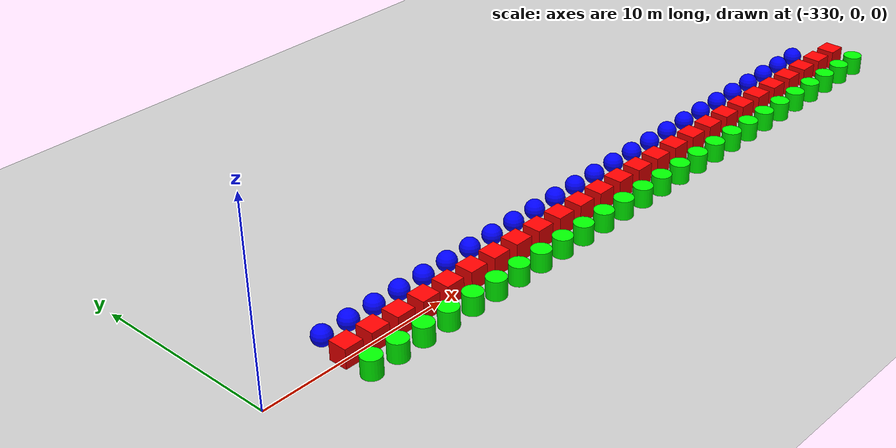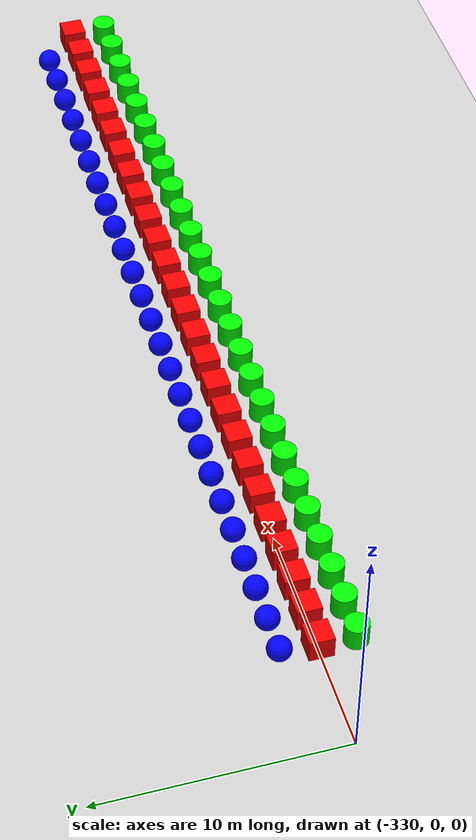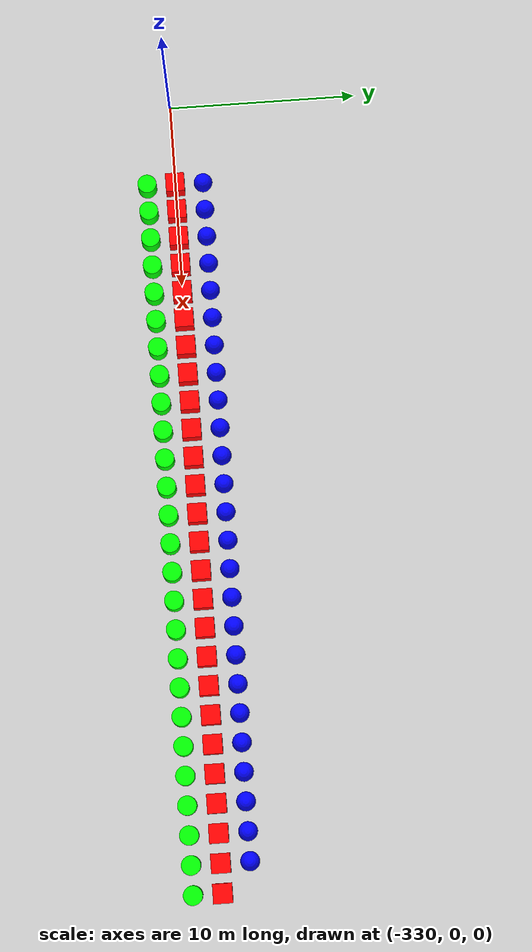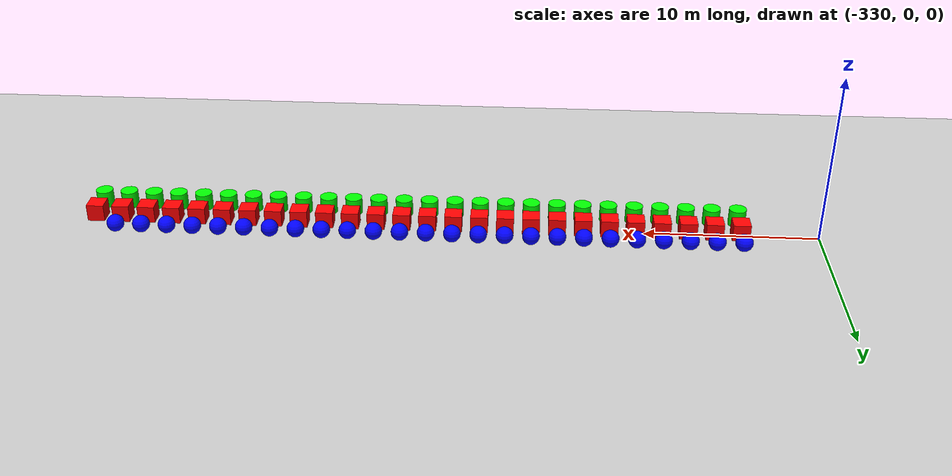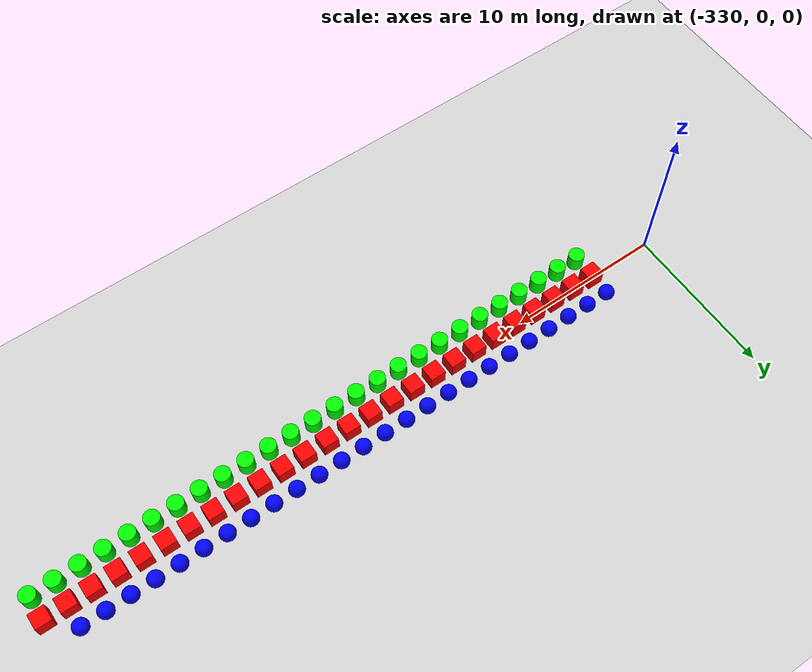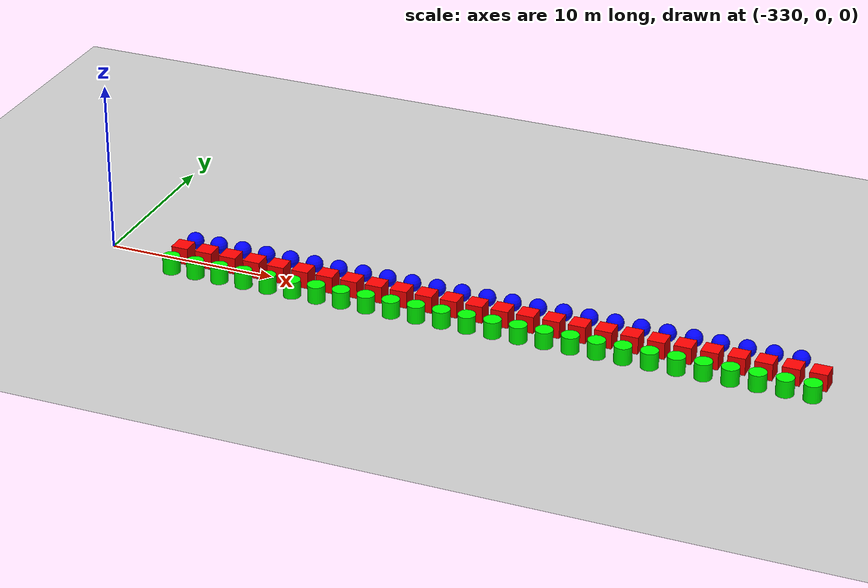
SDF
<sdf version="1.6">
 <world name="shapes">
  <model name="ground_plane">
   <static>true</static>
   <link name="link">
    <collision name="collision">
     <geometry><plane><normal>0 0 1</normal><size>100 100</size></plane></geometry>
    </collision>
    <visual name="visual">
     <geometry><plane><normal>0 0 1</normal><size>100 100</size></plane></geometry>
     <material>
      <ambient>0.8 0.8 0.8 1</ambient>
      <diffuse>0.8 0.8 0.8 1</diffuse>
      <specular>0.8 0.8 0.8 1</specular>
     </material>
    </visual>
   </link>
  </model>
  <model name="box_283">
   <static>false</static>
   <pose>-325.5 0 0.5 0 0 0</pose>
   <link name="box_link">
    <inertial>
     <inertia><ixx>1</ixx><ixy>0</ixy><ixz>0</ixz><iyy>1</iyy><iyz>0</iyz><izz>1</izz></inertia>
     <mass>1.0</mass>
    </inertial>
    <collision name="box_collision"><geometry><box><size>1 1 1</size></box></geometry></collision>
    <visual name="box_visual">
     <geometry><box><size>1 1 1</size></box></geometry>
     <material><ambient>1 0 0 1</ambient><diffuse>1 0 0 1</diffuse><specular>1 0 0 1</specular></material>
    </visual>
   </link>
  </model>
  <model name="cylinder_283">
   <static>false</static>
   <pose>-325.5 -1.5 0.5 0 0 0</pose>
   <link name="cylinder_link">
    <inertial>
     <inertia><ixx>2</ixx><ixy>0</ixy><ixz>0</ixz><iyy>2</iyy><iyz>0</iyz><izz>2</izz></inertia>
     <mass>2.0</mass>
    </inertial>
    <collision name="cylinder_collision">
     <geometry><cylinder><radius>0.5</radius><length>1.0</length></cylinder></geometry>
    </collision>
    <visual name="cylinder_visual">
     <geometry><cylinder><radius>0.5</radius><length>1.0</length></cylinder></geometry>
     <material><ambient>0 1 0 1</ambient><diffuse>0 1 0 1</diffuse><specular>0 1 0 1</specular></material>
    </visual>
   </link>
  </model>
  <model name="sphere_283">
   <static>false</static>
   <pose>-325.5 1.5 0.5 0 0 0</pose>
   <link name="sphere_link">
    <inertial>
     <inertia><ixx>3</ixx><ixy>0</ixy><ixz>0</ixz><iyy>3</iyy><iyz>0</iyz><izz>3</izz></inertia>
     <mass>3.0</mass>
    </inertial>
    <collision name="sphere_collision"><geometry><sphere><radius>0.5</radius></sphere></geometry></collision>
    <visual name="sphere_visual">
     <geometry><sphere><radius>0.5</radius></sphere></geometry>
     <material><ambient>0 0 1 1</ambient><diffuse>0 0 1 1</diffuse><specular>0 0 1 1</specular></material>
    </visual>
   </link>
  </model>
  <model name="box_284">
   <static>false</static>
   <pose>-324.0 0 0.5 0 0 0</pose>
   <link name="box_link">
    <inertial>
     <inertia><ixx>1</ixx><ixy>0</ixy><ixz>0</ixz><iyy>1</iyy><iyz>0</iyz><izz>1</izz></inertia>
     <mass>1.0</mass>
    </inertial>
    <collision name="box_collision"><geometry><box><size>1 1 1</size></box></geometry></collision>
    <visual name="box_visual">
     <geometry><box><size>1 1 1</size></box></geometry>
     <material><ambient>1 0 0 1</ambient><diffuse>1 0 0 1</diffuse><specular>1 0 0 1</specular></material>
    </visual>
   </link>
  </model>
  <model name="cylinder_284">
   <static>false</static>
   <pose>-324.0 -1.5 0.5 0 0 0</pose>
   <link name="cylinder_link">
    <inertial>
     <inertia><ixx>2</ixx><ixy>0</ixy><ixz>0</ixz><iyy>2</iyy><iyz>0</iyz><izz>2</izz></inertia>
     <mass>2.0</mass>
    </inertial>
    <collision name="cylinder_collision">
     <geometry><cylinder><radius>0.5</radius><length>1.0</length></cylinder></geometry>
    </collision>
    <visual name="cylinder_visual">
     <geometry><cylinder><radius>0.5</radius><length>1.0</length></cylinder></geometry>
     <material><ambient>0 1 0 1</ambient><diffuse>0 1 0 1</diffuse><specular>0 1 0 1</specular></material>
    </visual>
   </link>
  </model>
  <model name="sphere_284">
   <static>false</static>
   <pose>-324.0 1.5 0.5 0 0 0</pose>
   <link name="sphere_link">
    <inertial>
     <inertia><ixx>3</ixx><ixy>0</ixy><ixz>0</ixz><iyy>3</iyy><iyz>0</iyz><izz>3</izz></inertia>
     <mass>3.0</mass>
    </inertial>
    <collision name="sphere_collision"><geometry><sphere><radius>0.5</radius></sphere></geometry></collision>
    <visual name="sphere_visual">
     <geometry><sphere><radius>0.5</radius></sphere></geometry>
     <material><ambient>0 0 1 1</ambient><diffuse>0 0 1 1</diffuse><specular>0 0 1 1</specular></material>
    </visual>
   </link>
  </model>
  <model name="box_285">
   <static>false</static>
   <pose>-322.5 0 0.5 0 0 0</pose>
   <link name="box_link">
    <inertial>
     <inertia><ixx>1</ixx><ixy>0</ixy><ixz>0</ixz><iyy>1</iyy><iyz>0</iyz><izz>1</izz></inertia>
     <mass>1.0</mass>
    </inertial>
    <collision name="box_collision"><geometry><box><size>1 1 1</size></box></geometry></collision>
    <visual name="box_visual">
     <geometry><box><size>1 1 1</size></box></geometry>
     <material><ambient>1 0 0 1</ambient><diffuse>1 0 0 1</diffuse><specular>1 0 0 1</specular></material>
    </visual>
   </link>
  </model>
  <model name="cylinder_285">
   <static>false</static>
   <pose>-322.5 -1.5 0.5 0 0 0</pose>
   <link name="cylinder_link">
    <inertial>
     <inertia><ixx>2</ixx><ixy>0</ixy><ixz>0</ixz><iyy>2</iyy><iyz>0</iyz><izz>2</izz></inertia>
     <mass>2.0</mass>
    </inertial>
    <collision name="cylinder_collision">
     <geometry><cylinder><radius>0.5</radius><length>1.0</length></cylinder></geometry>
    </collision>
    <visual name="cylinder_visual">
     <geometry><cylinder><radius>0.5</radius><length>1.0</length></cylinder></geometry>
     <material><ambient>0 1 0 1</ambient><diffuse>0 1 0 1</diffuse><specular>0 1 0 1</specular></material>
    </visual>
   </link>
  </model>
  <model name="sphere_285">
   <static>false</static>
   <pose>-322.5 1.5 0.5 0 0 0</pose>
   <link name="sphere_link">
    <inertial>
     <inertia><ixx>3</ixx><ixy>0</ixy><ixz>0</ixz><iyy>3</iyy><iyz>0</iyz><izz>3</izz></inertia>
     <mass>3.0</mass>
    </inertial>
    <collision name="sphere_collision"><geometry><sphere><radius>0.5</radius></sphere></geometry></collision>
    <visual name="sphere_visual">
     <geometry><sphere><radius>0.5</radius></sphere></geometry>
     <material><ambient>0 0 1 1</ambient><diffuse>0 0 1 1</diffuse><specular>0 0 1 1</specular></material>
    </visual>
   </link>
  </model>
  <model name="box_286">
   <static>false</static>
   <pose>-321.0 0 0.5 0 0 0</pose>
   <link name="box_link">
    <inertial>
     <inertia><ixx>1</ixx><ixy>0</ixy><ixz>0</ixz><iyy>1</iyy><iyz>0</iyz><izz>1</izz></inertia>
     <mass>1.0</mass>
    </inertial>
    <collision name="box_collision"><geometry><box><size>1 1 1</size></box></geometry></collision>
    <visual name="box_visual">
     <geometry><box><size>1 1 1</size></box></geometry>
     <material><ambient>1 0 0 1</ambient><diffuse>1 0 0 1</diffuse><specular>1 0 0 1</specular></material>
    </visual>
   </link>
  </model>
  <model name="cylinder_286">
   <static>false</static>
   <pose>-321.0 -1.5 0.5 0 0 0</pose>
   <link name="cylinder_link">
    <inertial>
     <inertia><ixx>2</ixx><ixy>0</ixy><ixz>0</ixz><iyy>2</iyy><iyz>0</iyz><izz>2</izz></inertia>
     <mass>2.0</mass>
    </inertial>
    <collision name="cylinder_collision">
     <geometry><cylinder><radius>0.5</radius><length>1.0</length></cylinder></geometry>
    </collision>
    <visual name="cylinder_visual">
     <geometry><cylinder><radius>0.5</radius><length>1.0</length></cylinder></geometry>
     <material><ambient>0 1 0 1</ambient><diffuse>0 1 0 1</diffuse><specular>0 1 0 1</specular></material>
    </visual>
   </link>
  </model>
  <model name="sphere_286">
   <static>false</static>
   <pose>-321.0 1.5 0.5 0 0 0</pose>
   <link name="sphere_link">
    <inertial>
     <inertia><ixx>3</ixx><ixy>0</ixy><ixz>0</ixz><iyy>3</iyy><iyz>0</iyz><izz>3</izz></inertia>
     <mass>3.0</mass>
    </inertial>
    <collision name="sphere_collision"><geometry><sphere><radius>0.5</radius></sphere></geometry></collision>
    <visual name="sphere_visual">
     <geometry><sphere><radius>0.5</radius></sphere></geometry>
     <material><ambient>0 0 1 1</ambient><diffuse>0 0 1 1</diffuse><specular>0 0 1 1</specular></material>
    </visual>
   </link>
  </model>
  <model name="box_287">
   <static>false</static>
   <pose>-319.5 0 0.5 0 0 0</pose>
   <link name="box_link">
    <inertial>
     <inertia><ixx>1</ixx><ixy>0</ixy><ixz>0</ixz><iyy>1</iyy><iyz>0</iyz><izz>1</izz></inertia>
     <mass>1.0</mass>
    </inertial>
    <collision name="box_collision"><geometry><box><size>1 1 1</size></box></geometry></collision>
    <visual name="box_visual">
     <geometry><box><size>1 1 1</size></box></geometry>
     <material><ambient>1 0 0 1</ambient><diffuse>1 0 0 1</diffuse><specular>1 0 0 1</specular></material>
    </visual>
   </link>
  </model>
  <model name="cylinder_287">
   <static>false</static>
   <pose>-319.5 -1.5 0.5 0 0 0</pose>
   <link name="cylinder_link">
    <inertial>
     <inertia><ixx>2</ixx><ixy>0</ixy><ixz>0</ixz><iyy>2</iyy><iyz>0</iyz><izz>2</izz></inertia>
     <mass>2.0</mass>
    </inertial>
    <collision name="cylinder_collision">
     <geometry><cylinder><radius>0.5</radius><length>1.0</length></cylinder></geometry>
    </collision>
    <visual name="cylinder_visual">
     <geometry><cylinder><radius>0.5</radius><length>1.0</length></cylinder></geometry>
     <material><ambient>0 1 0 1</ambient><diffuse>0 1 0 1</diffuse><specular>0 1 0 1</specular></material>
    </visual>
   </link>
  </model>
  <model name="sphere_287">
   <static>false</static>
   <pose>-319.5 1.5 0.5 0 0 0</pose>
   <link name="sphere_link">
    <inertial>
     <inertia><ixx>3</ixx><ixy>0</ixy><ixz>0</ixz><iyy>3</iyy><iyz>0</iyz><izz>3</izz></inertia>
     <mass>3.0</mass>
    </inertial>
    <collision name="sphere_collision"><geometry><sphere><radius>0.5</radius></sphere></geometry></collision>
    <visual name="sphere_visual">
     <geometry><sphere><radius>0.5</radius></sphere></geometry>
     <material><ambient>0 0 1 1</ambient><diffuse>0 0 1 1</diffuse><specular>0 0 1 1</specular></material>
    </visual>
   </link>
  </model>
  <model name="box_288">
   <static>false</static>
   <pose>-318.0 0 0.5 0 0 0</pose>
   <link name="box_link">
    <inertial>
     <inertia><ixx>1</ixx><ixy>0</ixy><ixz>0</ixz><iyy>1</iyy><iyz>0</iyz><izz>1</izz></inertia>
     <mass>1.0</mass>
    </inertial>
    <collision name="box_collision"><geometry><box><size>1 1 1</size></box></geometry></collision>
    <visual name="box_visual">
     <geometry><box><size>1 1 1</size></box></geometry>
     <material><ambient>1 0 0 1</ambient><diffuse>1 0 0 1</diffuse><specular>1 0 0 1</specular></material>
    </visual>
   </link>
  </model>
  <model name="cylinder_288">
   <static>false</static>
   <pose>-318.0 -1.5 0.5 0 0 0</pose>
   <link name="cylinder_link">
    <inertial>
     <inertia><ixx>2</ixx><ixy>0</ixy><ixz>0</ixz><iyy>2</iyy><iyz>0</iyz><izz>2</izz></inertia>
     <mass>2.0</mass>
    </inertial>
    <collision name="cylinder_collision">
     <geometry><cylinder><radius>0.5</radius><length>1.0</length></cylinder></geometry>
    </collision>
    <visual name="cylinder_visual">
     <geometry><cylinder><radius>0.5</radius><length>1.0</length></cylinder></geometry>
     <material><ambient>0 1 0 1</ambient><diffuse>0 1 0 1</diffuse><specular>0 1 0 1</specular></material>
    </visual>
   </link>
  </model>
  <model name="sphere_288">
   <static>false</static>
   <pose>-318.0 1.5 0.5 0 0 0</pose>
   <link name="sphere_link">
    <inertial>
     <inertia><ixx>3</ixx><ixy>0</ixy><ixz>0</ixz><iyy>3</iyy><iyz>0</iyz><izz>3</izz></inertia>
     <mass>3.0</mass>
    </inertial>
    <collision name="sphere_collision"><geometry><sphere><radius>0.5</radius></sphere></geometry></collision>
    <visual name="sphere_visual">
     <geometry><sphere><radius>0.5</radius></sphere></geometry>
     <material><ambient>0 0 1 1</ambient><diffuse>0 0 1 1</diffuse><specular>0 0 1 1</specular></material>
    </visual>
   </link>
  </model>
  <model name="box_289">
   <static>false</static>
   <pose>-316.5 0 0.5 0 0 0</pose>
   <link name="box_link">
    <inertial>
     <inertia><ixx>1</ixx><ixy>0</ixy><ixz>0</ixz><iyy>1</iyy><iyz>0</iyz><izz>1</izz></inertia>
     <mass>1.0</mass>
    </inertial>
    <collision name="box_collision"><geometry><box><size>1 1 1</size></box></geometry></collision>
    <visual name="box_visual">
     <geometry><box><size>1 1 1</size></box></geometry>
     <material><ambient>1 0 0 1</ambient><diffuse>1 0 0 1</diffuse><specular>1 0 0 1</specular></material>
    </visual>
   </link>
  </model>
  <model name="cylinder_289">
   <static>false</static>
   <pose>-316.5 -1.5 0.5 0 0 0</pose>
   <link name="cylinder_link">
    <inertial>
     <inertia><ixx>2</ixx><ixy>0</ixy><ixz>0</ixz><iyy>2</iyy><iyz>0</iyz><izz>2</izz></inertia>
     <mass>2.0</mass>
    </inertial>
    <collision name="cylinder_collision">
     <geometry><cylinder><radius>0.5</radius><length>1.0</length></cylinder></geometry>
    </collision>
    <visual name="cylinder_visual">
     <geometry><cylinder><radius>0.5</radius><length>1.0</length></cylinder></geometry>
     <material><ambient>0 1 0 1</ambient><diffuse>0 1 0 1</diffuse><specular>0 1 0 1</specular></material>
    </visual>
   </link>
  </model>
  <model name="sphere_289">
   <static>false</static>
   <pose>-316.5 1.5 0.5 0 0 0</pose>
   <link name="sphere_link">
    <inertial>
     <inertia><ixx>3</ixx><ixy>0</ixy><ixz>0</ixz><iyy>3</iyy><iyz>0</iyz><izz>3</izz></inertia>
     <mass>3.0</mass>
    </inertial>
    <collision name="sphere_collision"><geometry><sphere><radius>0.5</radius></sphere></geometry></collision>
    <visual name="sphere_visual">
     <geometry><sphere><radius>0.5</radius></sphere></geometry>
     <material><ambient>0 0 1 1</ambient><diffuse>0 0 1 1</diffuse><specular>0 0 1 1</specular></material>
    </visual>
   </link>
  </model>
  <model name="box_290">
   <static>false</static>
   <pose>-315.0 0 0.5 0 0 0</pose>
   <link name="box_link">
    <inertial>
     <inertia><ixx>1</ixx><ixy>0</ixy><ixz>0</ixz><iyy>1</iyy><iyz>0</iyz><izz>1</izz></inertia>
     <mass>1.0</mass>
    </inertial>
    <collision name="box_collision"><geometry><box><size>1 1 1</size></box></geometry></collision>
    <visual name="box_visual">
     <geometry><box><size>1 1 1</size></box></geometry>
     <material><ambient>1 0 0 1</ambient><diffuse>1 0 0 1</diffuse><specular>1 0 0 1</specular></material>
    </visual>
   </link>
  </model>
  <model name="cylinder_290">
   <static>false</static>
   <pose>-315.0 -1.5 0.5 0 0 0</pose>
   <link name="cylinder_link">
    <inertial>
     <inertia><ixx>2</ixx><ixy>0</ixy><ixz>0</ixz><iyy>2</iyy><iyz>0</iyz><izz>2</izz></inertia>
     <mass>2.0</mass>
    </inertial>
    <collision name="cylinder_collision">
     <geometry><cylinder><radius>0.5</radius><length>1.0</length></cylinder></geometry>
    </collision>
    <visual name="cylinder_visual">
     <geometry><cylinder><radius>0.5</radius><length>1.0</length></cylinder></geometry>
     <material><ambient>0 1 0 1</ambient><diffuse>0 1 0 1</diffuse><specular>0 1 0 1</specular></material>
    </visual>
   </link>
  </model>
  <model name="sphere_290">
   <static>false</static>
   <pose>-315.0 1.5 0.5 0 0 0</pose>
   <link name="sphere_link">
    <inertial>
     <inertia><ixx>3</ixx><ixy>0</ixy><ixz>0</ixz><iyy>3</iyy><iyz>0</iyz><izz>3</izz></inertia>
     <mass>3.0</mass>
    </inertial>
    <collision name="sphere_collision"><geometry><sphere><radius>0.5</radius></sphere></geometry></collision>
    <visual name="sphere_visual">
     <geometry><sphere><radius>0.5</radius></sphere></geometry>
     <material><ambient>0 0 1 1</ambient><diffuse>0 0 1 1</diffuse><specular>0 0 1 1</specular></material>
    </visual>
   </link>
  </model>
  <model name="box_291">
   <static>false</static>
   <pose>-313.5 0 0.5 0 0 0</pose>
   <link name="box_link">
    <inertial>
     <inertia><ixx>1</ixx><ixy>0</ixy><ixz>0</ixz><iyy>1</iyy><iyz>0</iyz><izz>1</izz></inertia>
     <mass>1.0</mass>
    </inertial>
    <collision name="box_collision"><geometry><box><size>1 1 1</size></box></geometry></collision>
    <visual name="box_visual">
     <geometry><box><size>1 1 1</size></box></geometry>
     <material><ambient>1 0 0 1</ambient><diffuse>1 0 0 1</diffuse><specular>1 0 0 1</specular></material>
    </visual>
   </link>
  </model>
  <model name="cylinder_291">
   <static>false</static>
   <pose>-313.5 -1.5 0.5 0 0 0</pose>
   <link name="cylinder_link">
    <inertial>
     <inertia><ixx>2</ixx><ixy>0</ixy><ixz>0</ixz><iyy>2</iyy><iyz>0</iyz><izz>2</izz></inertia>
     <mass>2.0</mass>
    </inertial>
    <collision name="cylinder_collision">
     <geometry><cylinder><radius>0.5</radius><length>1.0</length></cylinder></geometry>
    </collision>
    <visual name="cylinder_visual">
     <geometry><cylinder><radius>0.5</radius><length>1.0</length></cylinder></geometry>
     <material><ambient>0 1 0 1</ambient><diffuse>0 1 0 1</diffuse><specular>0 1 0 1</specular></material>
    </visual>
   </link>
  </model>
  <model name="sphere_291">
   <static>false</static>
   <pose>-313.5 1.5 0.5 0 0 0</pose>
   <link name="sphere_link">
    <inertial>
     <inertia><ixx>3</ixx><ixy>0</ixy><ixz>0</ixz><iyy>3</iyy><iyz>0</iyz><izz>3</izz></inertia>
     <mass>3.0</mass>
    </inertial>
    <collision name="sphere_collision"><geometry><sphere><radius>0.5</radius></sphere></geometry></collision>
    <visual name="sphere_visual">
     <geometry><sphere><radius>0.5</radius></sphere></geometry>
     <material><ambient>0 0 1 1</ambient><diffuse>0 0 1 1</diffuse><specular>0 0 1 1</specular></material>
    </visual>
   </link>
  </model>
  <model name="box_292">
   <static>false</static>
   <pose>-312.0 0 0.5 0 0 0</pose>
   <link name="box_link">
    <inertial>
     <inertia><ixx>1</ixx><ixy>0</ixy><ixz>0</ixz><iyy>1</iyy><iyz>0</iyz><izz>1</izz></inertia>
     <mass>1.0</mass>
    </inertial>
    <collision name="box_collision"><geometry><box><size>1 1 1</size></box></geometry></collision>
    <visual name="box_visual">
     <geometry><box><size>1 1 1</size></box></geometry>
     <material><ambient>1 0 0 1</ambient><diffuse>1 0 0 1</diffuse><specular>1 0 0 1</specular></material>
    </visual>
   </link>
  </model>
  <model name="cylinder_292">
   <static>false</static>
   <pose>-312.0 -1.5 0.5 0 0 0</pose>
   <link name="cylinder_link">
    <inertial>
     <inertia><ixx>2</ixx><ixy>0</ixy><ixz>0</ixz><iyy>2</iyy><iyz>0</iyz><izz>2</izz></inertia>
     <mass>2.0</mass>
    </inertial>
    <collision name="cylinder_collision">
     <geometry><cylinder><radius>0.5</radius><length>1.0</length></cylinder></geometry>
    </collision>
    <visual name="cylinder_visual">
     <geometry><cylinder><radius>0.5</radius><length>1.0</length></cylinder></geometry>
     <material><ambient>0 1 0 1</ambient><diffuse>0 1 0 1</diffuse><specular>0 1 0 1</specular></material>
    </visual>
   </link>
  </model>
  <model name="sphere_292">
   <static>false</static>
   <pose>-312.0 1.5 0.5 0 0 0</pose>
   <link name="sphere_link">
    <inertial>
     <inertia><ixx>3</ixx><ixy>0</ixy><ixz>0</ixz><iyy>3</iyy><iyz>0</iyz><izz>3</izz></inertia>
     <mass>3.0</mass>
    </inertial>
    <collision name="sphere_collision"><geometry><sphere><radius>0.5</radius></sphere></geometry></collision>
    <visual name="sphere_visual">
     <geometry><sphere><radius>0.5</radius></sphere></geometry>
     <material><ambient>0 0 1 1</ambient><diffuse>0 0 1 1</diffuse><specular>0 0 1 1</specular></material>
    </visual>
   </link>
  </model>
  <model name="box_293">
   <static>false</static>
   <pose>-310.5 0 0.5 0 0 0</pose>
   <link name="box_link">
    <inertial>
     <inertia><ixx>1</ixx><ixy>0</ixy><ixz>0</ixz><iyy>1</iyy><iyz>0</iyz><izz>1</izz></inertia>
     <mass>1.0</mass>
    </inertial>
    <collision name="box_collision"><geometry><box><size>1 1 1</size></box></geometry></collision>
    <visual name="box_visual">
     <geometry><box><size>1 1 1</size></box></geometry>
     <material><ambient>1 0 0 1</ambient><diffuse>1 0 0 1</diffuse><specular>1 0 0 1</specular></material>
    </visual>
   </link>
  </model>
  <model name="cylinder_293">
   <static>false</static>
   <pose>-310.5 -1.5 0.5 0 0 0</pose>
   <link name="cylinder_link">
    <inertial>
     <inertia><ixx>2</ixx><ixy>0</ixy><ixz>0</ixz><iyy>2</iyy><iyz>0</iyz><izz>2</izz></inertia>
     <mass>2.0</mass>
    </inertial>
    <collision name="cylinder_collision">
     <geometry><cylinder><radius>0.5</radius><length>1.0</length></cylinder></geometry>
    </collision>
    <visual name="cylinder_visual">
     <geometry><cylinder><radius>0.5</radius><length>1.0</length></cylinder></geometry>
     <material><ambient>0 1 0 1</ambient><diffuse>0 1 0 1</diffuse><specular>0 1 0 1</specular></material>
    </visual>
   </link>
  </model>
  <model name="sphere_293">
   <static>false</static>
   <pose>-310.5 1.5 0.5 0 0 0</pose>
   <link name="sphere_link">
    <inertial>
     <inertia><ixx>3</ixx><ixy>0</ixy><ixz>0</ixz><iyy>3</iyy><iyz>0</iyz><izz>3</izz></inertia>
     <mass>3.0</mass>
    </inertial>
    <collision name="sphere_collision"><geometry><sphere><radius>0.5</radius></sphere></geometry></collision>
    <visual name="sphere_visual">
     <geometry><sphere><radius>0.5</radius></sphere></geometry>
     <material><ambient>0 0 1 1</ambient><diffuse>0 0 1 1</diffuse><specular>0 0 1 1</specular></material>
    </visual>
   </link>
  </model>
  <model name="box_294">
   <static>false</static>
   <pose>-309.0 0 0.5 0 0 0</pose>
   <link name="box_link">
    <inertial>
     <inertia><ixx>1</ixx><ixy>0</ixy><ixz>0</ixz><iyy>1</iyy><iyz>0</iyz><izz>1</izz></inertia>
     <mass>1.0</mass>
    </inertial>
    <collision name="box_collision"><geometry><box><size>1 1 1</size></box></geometry></collision>
    <visual name="box_visual">
     <geometry><box><size>1 1 1</size></box></geometry>
     <material><ambient>1 0 0 1</ambient><diffuse>1 0 0 1</diffuse><specular>1 0 0 1</specular></material>
    </visual>
   </link>
  </model>
  <model name="cylinder_294">
   <static>false</static>
   <pose>-309.0 -1.5 0.5 0 0 0</pose>
   <link name="cylinder_link">
    <inertial>
     <inertia><ixx>2</ixx><ixy>0</ixy><ixz>0</ixz><iyy>2</iyy><iyz>0</iyz><izz>2</izz></inertia>
     <mass>2.0</mass>
    </inertial>
    <collision name="cylinder_collision">
     <geometry><cylinder><radius>0.5</radius><length>1.0</length></cylinder></geometry>
    </collision>
    <visual name="cylinder_visual">
     <geometry><cylinder><radius>0.5</radius><length>1.0</length></cylinder></geometry>
     <material><ambient>0 1 0 1</ambient><diffuse>0 1 0 1</diffuse><specular>0 1 0 1</specular></material>
    </visual>
   </link>
  </model>
  <model name="sphere_294">
   <static>false</static>
   <pose>-309.0 1.5 0.5 0 0 0</pose>
   <link name="sphere_link">
    <inertial>
     <inertia><ixx>3</ixx><ixy>0</ixy><ixz>0</ixz><iyy>3</iyy><iyz>0</iyz><izz>3</izz></inertia>
     <mass>3.0</mass>
    </inertial>
    <collision name="sphere_collision"><geometry><sphere><radius>0.5</radius></sphere></geometry></collision>
    <visual name="sphere_visual">
     <geometry><sphere><radius>0.5</radius></sphere></geometry>
     <material><ambient>0 0 1 1</ambient><diffuse>0 0 1 1</diffuse><specular>0 0 1 1</specular></material>
    </visual>
   </link>
  </model>
  <model name="box_295">
   <static>false</static>
   <pose>-307.5 0 0.5 0 0 0</pose>
   <link name="box_link">
    <inertial>
     <inertia><ixx>1</ixx><ixy>0</ixy><ixz>0</ixz><iyy>1</iyy><iyz>0</iyz><izz>1</izz></inertia>
     <mass>1.0</mass>
    </inertial>
    <collision name="box_collision"><geometry><box><size>1 1 1</size></box></geometry></collision>
    <visual name="box_visual">
     <geometry><box><size>1 1 1</size></box></geometry>
     <material><ambient>1 0 0 1</ambient><diffuse>1 0 0 1</diffuse><specular>1 0 0 1</specular></material>
    </visual>
   </link>
  </model>
  <model name="cylinder_295">
   <static>false</static>
   <pose>-307.5 -1.5 0.5 0 0 0</pose>
   <link name="cylinder_link">
    <inertial>
     <inertia><ixx>2</ixx><ixy>0</ixy><ixz>0</ixz><iyy>2</iyy><iyz>0</iyz><izz>2</izz></inertia>
     <mass>2.0</mass>
    </inertial>
    <collision name="cylinder_collision">
     <geometry><cylinder><radius>0.5</radius><length>1.0</length></cylinder></geometry>
    </collision>
    <visual name="cylinder_visual">
     <geometry><cylinder><radius>0.5</radius><length>1.0</length></cylinder></geometry>
     <material><ambient>0 1 0 1</ambient><diffuse>0 1 0 1</diffuse><specular>0 1 0 1</specular></material>
    </visual>
   </link>
  </model>
  <model name="sphere_295">
   <static>false</static>
   <pose>-307.5 1.5 0.5 0 0 0</pose>
   <link name="sphere_link">
    <inertial>
     <inertia><ixx>3</ixx><ixy>0</ixy><ixz>0</ixz><iyy>3</iyy><iyz>0</iyz><izz>3</izz></inertia>
     <mass>3.0</mass>
    </inertial>
    <collision name="sphere_collision"><geometry><sphere><radius>0.5</radius></sphere></geometry></collision>
    <visual name="sphere_visual">
     <geometry><sphere><radius>0.5</radius></sphere></geometry>
     <material><ambient>0 0 1 1</ambient><diffuse>0 0 1 1</diffuse><specular>0 0 1 1</specular></material>
    </visual>
   </link>
  </model>
  <model name="box_296">
   <static>false</static>
   <pose>-306.0 0 0.5 0 0 0</pose>
   <link name="box_link">
    <inertial>
     <inertia><ixx>1</ixx><ixy>0</ixy><ixz>0</ixz><iyy>1</iyy><iyz>0</iyz><izz>1</izz></inertia>
     <mass>1.0</mass>
    </inertial>
    <collision name="box_collision"><geometry><box><size>1 1 1</size></box></geometry></collision>
    <visual name="box_visual">
     <geometry><box><size>1 1 1</size></box></geometry>
     <material><ambient>1 0 0 1</ambient><diffuse>1 0 0 1</diffuse><specular>1 0 0 1</specular></material>
    </visual>
   </link>
  </model>
  <model name="cylinder_296">
   <static>false</static>
   <pose>-306.0 -1.5 0.5 0 0 0</pose>
   <link name="cylinder_link">
    <inertial>
     <inertia><ixx>2</ixx><ixy>0</ixy><ixz>0</ixz><iyy>2</iyy><iyz>0</iyz><izz>2</izz></inertia>
     <mass>2.0</mass>
    </inertial>
    <collision name="cylinder_collision">
     <geometry><cylinder><radius>0.5</radius><length>1.0</length></cylinder></geometry>
    </collision>
    <visual name="cylinder_visual">
     <geometry><cylinder><radius>0.5</radius><length>1.0</length></cylinder></geometry>
     <material><ambient>0 1 0 1</ambient><diffuse>0 1 0 1</diffuse><specular>0 1 0 1</specular></material>
    </visual>
   </link>
  </model>
  <model name="sphere_296">
   <static>false</static>
   <pose>-306.0 1.5 0.5 0 0 0</pose>
   <link name="sphere_link">
    <inertial>
     <inertia><ixx>3</ixx><ixy>0</ixy><ixz>0</ixz><iyy>3</iyy><iyz>0</iyz><izz>3</izz></inertia>
     <mass>3.0</mass>
    </inertial>
    <collision name="sphere_collision"><geometry><sphere><radius>0.5</radius></sphere></geometry></collision>
    <visual name="sphere_visual">
     <geometry><sphere><radius>0.5</radius></sphere></geometry>
     <material><ambient>0 0 1 1</ambient><diffuse>0 0 1 1</diffuse><specular>0 0 1 1</specular></material>
    </visual>
   </link>
  </model>
  <model name="box_297">
   <static>false</static>
   <pose>-304.5 0 0.5 0 0 0</pose>
   <link name="box_link">
    <inertial>
     <inertia><ixx>1</ixx><ixy>0</ixy><ixz>0</ixz><iyy>1</iyy><iyz>0</iyz><izz>1</izz></inertia>
     <mass>1.0</mass>
    </inertial>
    <collision name="box_collision"><geometry><box><size>1 1 1</size></box></geometry></collision>
    <visual name="box_visual">
     <geometry><box><size>1 1 1</size></box></geometry>
     <material><ambient>1 0 0 1</ambient><diffuse>1 0 0 1</diffuse><specular>1 0 0 1</specular></material>
    </visual>
   </link>
  </model>
  <model name="cylinder_297">
   <static>false</static>
   <pose>-304.5 -1.5 0.5 0 0 0</pose>
   <link name="cylinder_link">
    <inertial>
     <inertia><ixx>2</ixx><ixy>0</ixy><ixz>0</ixz><iyy>2</iyy><iyz>0</iyz><izz>2</izz></inertia>
     <mass>2.0</mass>
    </inertial>
    <collision name="cylinder_collision">
     <geometry><cylinder><radius>0.5</radius><length>1.0</length></cylinder></geometry>
    </collision>
    <visual name="cylinder_visual">
     <geometry><cylinder><radius>0.5</radius><length>1.0</length></cylinder></geometry>
     <material><ambient>0 1 0 1</ambient><diffuse>0 1 0 1</diffuse><specular>0 1 0 1</specular></material>
    </visual>
   </link>
  </model>
  <model name="sphere_297">
   <static>false</static>
   <pose>-304.5 1.5 0.5 0 0 0</pose>
   <link name="sphere_link">
    <inertial>
     <inertia><ixx>3</ixx><ixy>0</ixy><ixz>0</ixz><iyy>3</iyy><iyz>0</iyz><izz>3</izz></inertia>
     <mass>3.0</mass>
    </inertial>
    <collision name="sphere_collision"><geometry><sphere><radius>0.5</radius></sphere></geometry></collision>
    <visual name="sphere_visual">
     <geometry><sphere><radius>0.5</radius></sphere></geometry>
     <material><ambient>0 0 1 1</ambient><diffuse>0 0 1 1</diffuse><specular>0 0 1 1</specular></material>
    </visual>
   </link>
  </model>
  <model name="box_298">
   <static>false</static>
   <pose>-303.0 0 0.5 0 0 0</pose>
   <link name="box_link">
    <inertial>
     <inertia><ixx>1</ixx><ixy>0</ixy><ixz>0</ixz><iyy>1</iyy><iyz>0</iyz><izz>1</izz></inertia>
     <mass>1.0</mass>
    </inertial>
    <collision name="box_collision"><geometry><box><size>1 1 1</size></box></geometry></collision>
    <visual name="box_visual">
     <geometry><box><size>1 1 1</size></box></geometry>
     <material><ambient>1 0 0 1</ambient><diffuse>1 0 0 1</diffuse><specular>1 0 0 1</specular></material>
    </visual>
   </link>
  </model>
  <model name="cylinder_298">
   <static>false</static>
   <pose>-303.0 -1.5 0.5 0 0 0</pose>
   <link name="cylinder_link">
    <inertial>
     <inertia><ixx>2</ixx><ixy>0</ixy><ixz>0</ixz><iyy>2</iyy><iyz>0</iyz><izz>2</izz></inertia>
     <mass>2.0</mass>
    </inertial>
    <collision name="cylinder_collision">
     <geometry><cylinder><radius>0.5</radius><length>1.0</length></cylinder></geometry>
    </collision>
    <visual name="cylinder_visual">
     <geometry><cylinder><radius>0.5</radius><length>1.0</length></cylinder></geometry>
     <material><ambient>0 1 0 1</ambient><diffuse>0 1 0 1</diffuse><specular>0 1 0 1</specular></material>
    </visual>
   </link>
  </model>
  <model name="sphere_298">
   <static>false</static>
   <pose>-303.0 1.5 0.5 0 0 0</pose>
   <link name="sphere_link">
    <inertial>
     <inertia><ixx>3</ixx><ixy>0</ixy><ixz>0</ixz><iyy>3</iyy><iyz>0</iyz><izz>3</izz></inertia>
     <mass>3.0</mass>
    </inertial>
    <collision name="sphere_collision"><geometry><sphere><radius>0.5</radius></sphere></geometry></collision>
    <visual name="sphere_visual">
     <geometry><sphere><radius>0.5</radius></sphere></geometry>
     <material><ambient>0 0 1 1</ambient><diffuse>0 0 1 1</diffuse><specular>0 0 1 1</specular></material>
    </visual>
   </link>
  </model>
  <model name="box_299">
   <static>false</static>
   <pose>-301.5 0 0.5 0 0 0</pose>
   <link name="box_link">
    <inertial>
     <inertia><ixx>1</ixx><ixy>0</ixy><ixz>0</ixz><iyy>1</iyy><iyz>0</iyz><izz>1</izz></inertia>
     <mass>1.0</mass>
    </inertial>
    <collision name="box_collision"><geometry><box><size>1 1 1</size></box></geometry></collision>
    <visual name="box_visual">
     <geometry><box><size>1 1 1</size></box></geometry>
     <material><ambient>1 0 0 1</ambient><diffuse>1 0 0 1</diffuse><specular>1 0 0 1</specular></material>
    </visual>
   </link>
  </model>
  <model name="cylinder_299">
   <static>false</static>
   <pose>-301.5 -1.5 0.5 0 0 0</pose>
   <link name="cylinder_link">
    <inertial>
     <inertia><ixx>2</ixx><ixy>0</ixy><ixz>0</ixz><iyy>2</iyy><iyz>0</iyz><izz>2</izz></inertia>
     <mass>2.0</mass>
    </inertial>
    <collision name="cylinder_collision">
     <geometry><cylinder><radius>0.5</radius><length>1.0</length></cylinder></geometry>
    </collision>
    <visual name="cylinder_visual">
     <geometry><cylinder><radius>0.5</radius><length>1.0</length></cylinder></geometry>
     <material><ambient>0 1 0 1</ambient><diffuse>0 1 0 1</diffuse><specular>0 1 0 1</specular></material>
    </visual>
   </link>
  </model>
  <model name="sphere_299">
   <static>false</static>
   <pose>-301.5 1.5 0.5 0 0 0</pose>
   <link name="sphere_link">
    <inertial>
     <inertia><ixx>3</ixx><ixy>0</ixy><ixz>0</ixz><iyy>3</iyy><iyz>0</iyz><izz>3</izz></inertia>
     <mass>3.0</mass>
    </inertial>
    <collision name="sphere_collision"><geometry><sphere><radius>0.5</radius></sphere></geometry></collision>
    <visual name="sphere_visual">
     <geometry><sphere><radius>0.5</radius></sphere></geometry>
     <material><ambient>0 0 1 1</ambient><diffuse>0 0 1 1</diffuse><specular>0 0 1 1</specular></material>
    </visual>
   </link>
  </model>
  <model name="box_300">
   <static>false</static>
   <pose>-300.0 0 0.5 0 0 0</pose>
   <link name="box_link">
    <inertial>
     <inertia><ixx>1</ixx><ixy>0</ixy><ixz>0</ixz><iyy>1</iyy><iyz>0</iyz><izz>1</izz></inertia>
     <mass>1.0</mass>
    </inertial>
    <collision name="box_collision"><geometry><box><size>1 1 1</size></box></geometry></collision>
    <visual name="box_visual">
     <geometry><box><size>1 1 1</size></box></geometry>
     <material><ambient>1 0 0 1</ambient><diffuse>1 0 0 1</diffuse><specular>1 0 0 1</specular></material>
    </visual>
   </link>
  </model>
  <model name="cylinder_300">
   <static>false</static>
   <pose>-300.0 -1.5 0.5 0 0 0</pose>
   <link name="cylinder_link">
    <inertial>
     <inertia><ixx>2</ixx><ixy>0</ixy><ixz>0</ixz><iyy>2</iyy><iyz>0</iyz><izz>2</izz></inertia>
     <mass>2.0</mass>
    </inertial>
    <collision name="cylinder_collision">
     <geometry><cylinder><radius>0.5</radius><length>1.0</length></cylinder></geometry>
    </collision>
    <visual name="cylinder_visual">
     <geometry><cylinder><radius>0.5</radius><length>1.0</length></cylinder></geometry>
     <material><ambient>0 1 0 1</ambient><diffuse>0 1 0 1</diffuse><specular>0 1 0 1</specular></material>
    </visual>
   </link>
  </model>
  <model name="sphere_300">
   <static>false</static>
   <pose>-300.0 1.5 0.5 0 0 0</pose>
   <link name="sphere_link">
    <inertial>
     <inertia><ixx>3</ixx><ixy>0</ixy><ixz>0</ixz><iyy>3</iyy><iyz>0</iyz><izz>3</izz></inertia>
     <mass>3.0</mass>
    </inertial>
    <collision name="sphere_collision"><geometry><sphere><radius>0.5</radius></sphere></geometry></collision>
    <visual name="sphere_visual">
     <geometry><sphere><radius>0.5</radius></sphere></geometry>
     <material><ambient>0 0 1 1</ambient><diffuse>0 0 1 1</diffuse><specular>0 0 1 1</specular></material>
    </visual>
   </link>
  </model>
  <model name="box_301">
   <static>false</static>
   <pose>-298.5 0 0.5 0 0 0</pose>
   <link name="box_link">
    <inertial>
     <inertia><ixx>1</ixx><ixy>0</ixy><ixz>0</ixz><iyy>1</iyy><iyz>0</iyz><izz>1</izz></inertia>
     <mass>1.0</mass>
    </inertial>
    <collision name="box_collision"><geometry><box><size>1 1 1</size></box></geometry></collision>
    <visual name="box_visual">
     <geometry><box><size>1 1 1</size></box></geometry>
     <material><ambient>1 0 0 1</ambient><diffuse>1 0 0 1</diffuse><specular>1 0 0 1</specular></material>
    </visual>
   </link>
  </model>
  <model name="cylinder_301">
   <static>false</static>
   <pose>-298.5 -1.5 0.5 0 0 0</pose>
   <link name="cylinder_link">
    <inertial>
     <inertia><ixx>2</ixx><ixy>0</ixy><ixz>0</ixz><iyy>2</iyy><iyz>0</iyz><izz>2</izz></inertia>
     <mass>2.0</mass>
    </inertial>
    <collision name="cylinder_collision">
     <geometry><cylinder><radius>0.5</radius><length>1.0</length></cylinder></geometry>
    </collision>
    <visual name="cylinder_visual">
     <geometry><cylinder><radius>0.5</radius><length>1.0</length></cylinder></geometry>
     <material><ambient>0 1 0 1</ambient><diffuse>0 1 0 1</diffuse><specular>0 1 0 1</specular></material>
    </visual>
   </link>
  </model>
  <model name="sphere_301">
   <static>false</static>
   <pose>-298.5 1.5 0.5 0 0 0</pose>
   <link name="sphere_link">
    <inertial>
     <inertia><ixx>3</ixx><ixy>0</ixy><ixz>0</ixz><iyy>3</iyy><iyz>0</iyz><izz>3</izz></inertia>
     <mass>3.0</mass>
    </inertial>
    <collision name="sphere_collision"><geometry><sphere><radius>0.5</radius></sphere></geometry></collision>
    <visual name="sphere_visual">
     <geometry><sphere><radius>0.5</radius></sphere></geometry>
     <material><ambient>0 0 1 1</ambient><diffuse>0 0 1 1</diffuse><specular>0 0 1 1</specular></material>
    </visual>
   </link>
  </model>
  <model name="box_302">
   <static>false</static>
   <pose>-297.0 0 0.5 0 0 0</pose>
   <link name="box_link">
    <inertial>
     <inertia><ixx>1</ixx><ixy>0</ixy><ixz>0</ixz><iyy>1</iyy><iyz>0</iyz><izz>1</izz></inertia>
     <mass>1.0</mass>
    </inertial>
    <collision name="box_collision"><geometry><box><size>1 1 1</size></box></geometry></collision>
    <visual name="box_visual">
     <geometry><box><size>1 1 1</size></box></geometry>
     <material><ambient>1 0 0 1</ambient><diffuse>1 0 0 1</diffuse><specular>1 0 0 1</specular></material>
    </visual>
   </link>
  </model>
  <model name="cylinder_302">
   <static>false</static>
   <pose>-297.0 -1.5 0.5 0 0 0</pose>
   <link name="cylinder_link">
    <inertial>
     <inertia><ixx>2</ixx><ixy>0</ixy><ixz>0</ixz><iyy>2</iyy><iyz>0</iyz><izz>2</izz></inertia>
     <mass>2.0</mass>
    </inertial>
    <collision name="cylinder_collision">
     <geometry><cylinder><radius>0.5</radius><length>1.0</length></cylinder></geometry>
    </collision>
    <visual name="cylinder_visual">
     <geometry><cylinder><radius>0.5</radius><length>1.0</length></cylinder></geometry>
     <material><ambient>0 1 0 1</ambient><diffuse>0 1 0 1</diffuse><specular>0 1 0 1</specular></material>
    </visual>
   </link>
  </model>
  <model name="sphere_302">
   <static>false</static>
   <pose>-297.0 1.5 0.5 0 0 0</pose>
   <link name="sphere_link">
    <inertial>
     <inertia><ixx>3</ixx><ixy>0</ixy><ixz>0</ixz><iyy>3</iyy><iyz>0</iyz><izz>3</izz></inertia>
     <mass>3.0</mass>
    </inertial>
    <collision name="sphere_collision"><geometry><sphere><radius>0.5</radius></sphere></geometry></collision>
    <visual name="sphere_visual">
     <geometry><sphere><radius>0.5</radius></sphere></geometry>
     <material><ambient>0 0 1 1</ambient><diffuse>0 0 1 1</diffuse><specular>0 0 1 1</specular></material>
    </visual>
   </link>
  </model>
  <model name="box_303">
   <static>false</static>
   <pose>-295.5 0 0.5 0 0 0</pose>
   <link name="box_link">
    <inertial>
     <inertia><ixx>1</ixx><ixy>0</ixy><ixz>0</ixz><iyy>1</iyy><iyz>0</iyz><izz>1</izz></inertia>
     <mass>1.0</mass>
    </inertial>
    <collision name="box_collision"><geometry><box><size>1 1 1</size></box></geometry></collision>
    <visual name="box_visual">
     <geometry><box><size>1 1 1</size></box></geometry>
     <material><ambient>1 0 0 1</ambient><diffuse>1 0 0 1</diffuse><specular>1 0 0 1</specular></material>
    </visual>
   </link>
  </model>
  <model name="cylinder_303">
   <static>false</static>
   <pose>-295.5 -1.5 0.5 0 0 0</pose>
   <link name="cylinder_link">
    <inertial>
     <inertia><ixx>2</ixx><ixy>0</ixy><ixz>0</ixz><iyy>2</iyy><iyz>0</iyz><izz>2</izz></inertia>
     <mass>2.0</mass>
    </inertial>
    <collision name="cylinder_collision">
     <geometry><cylinder><radius>0.5</radius><length>1.0</length></cylinder></geometry>
    </collision>
    <visual name="cylinder_visual">
     <geometry><cylinder><radius>0.5</radius><length>1.0</length></cylinder></geometry>
     <material><ambient>0 1 0 1</ambient><diffuse>0 1 0 1</diffuse><specular>0 1 0 1</specular></material>
    </visual>
   </link>
  </model>
  <model name="sphere_303">
   <static>false</static>
   <pose>-295.5 1.5 0.5 0 0 0</pose>
   <link name="sphere_link">
    <inertial>
     <inertia><ixx>3</ixx><ixy>0</ixy><ixz>0</ixz><iyy>3</iyy><iyz>0</iyz><izz>3</izz></inertia>
     <mass>3.0</mass>
    </inertial>
    <collision name="sphere_collision"><geometry><sphere><radius>0.5</radius></sphere></geometry></collision>
    <visual name="sphere_visual">
     <geometry><sphere><radius>0.5</radius></sphere></geometry>
     <material><ambient>0 0 1 1</ambient><diffuse>0 0 1 1</diffuse><specular>0 0 1 1</specular></material>
    </visual>
   </link>
  </model>
  <model name="box_304">
   <static>false</static>
   <pose>-294.0 0 0.5 0 0 0</pose>
   <link name="box_link">
    <inertial>
     <inertia><ixx>1</ixx><ixy>0</ixy><ixz>0</ixz><iyy>1</iyy><iyz>0</iyz><izz>1</izz></inertia>
     <mass>1.0</mass>
    </inertial>
    <collision name="box_collision"><geometry><box><size>1 1 1</size></box></geometry></collision>
    <visual name="box_visual">
     <geometry><box><size>1 1 1</size></box></geometry>
     <material><ambient>1 0 0 1</ambient><diffuse>1 0 0 1</diffuse><specular>1 0 0 1</specular></material>
    </visual>
   </link>
  </model>
  <model name="cylinder_304">
   <static>false</static>
   <pose>-294.0 -1.5 0.5 0 0 0</pose>
   <link name="cylinder_link">
    <inertial>
     <inertia><ixx>2</ixx><ixy>0</ixy><ixz>0</ixz><iyy>2</iyy><iyz>0</iyz><izz>2</izz></inertia>
     <mass>2.0</mass>
    </inertial>
    <collision name="cylinder_collision">
     <geometry><cylinder><radius>0.5</radius><length>1.0</length></cylinder></geometry>
    </collision>
    <visual name="cylinder_visual">
     <geometry><cylinder><radius>0.5</radius><length>1.0</length></cylinder></geometry>
     <material><ambient>0 1 0 1</ambient><diffuse>0 1 0 1</diffuse><specular>0 1 0 1</specular></material>
    </visual>
   </link>
  </model>
  <model name="sphere_304">
   <static>false</static>
   <pose>-294.0 1.5 0.5 0 0 0</pose>
   <link name="sphere_link">
    <inertial>
     <inertia><ixx>3</ixx><ixy>0</ixy><ixz>0</ixz><iyy>3</iyy><iyz>0</iyz><izz>3</izz></inertia>
     <mass>3.0</mass>
    </inertial>
    <collision name="sphere_collision"><geometry><sphere><radius>0.5</radius></sphere></geometry></collision>
    <visual name="sphere_visual">
     <geometry><sphere><radius>0.5</radius></sphere></geometry>
     <material><ambient>0 0 1 1</ambient><diffuse>0 0 1 1</diffuse><specular>0 0 1 1</specular></material>
    </visual>
   </link>
  </model>
  <model name="box_305">
   <static>false</static>
   <pose>-292.5 0 0.5 0 0 0</pose>
   <link name="box_link">
    <inertial>
     <inertia><ixx>1</ixx><ixy>0</ixy><ixz>0</ixz><iyy>1</iyy><iyz>0</iyz><izz>1</izz></inertia>
     <mass>1.0</mass>
    </inertial>
    <collision name="box_collision"><geometry><box><size>1 1 1</size></box></geometry></collision>
    <visual name="box_visual">
     <geometry><box><size>1 1 1</size></box></geometry>
     <material><ambient>1 0 0 1</ambient><diffuse>1 0 0 1</diffuse><specular>1 0 0 1</specular></material>
    </visual>
   </link>
  </model>
  <model name="cylinder_305">
   <static>false</static>
   <pose>-292.5 -1.5 0.5 0 0 0</pose>
   <link name="cylinder_link">
    <inertial>
     <inertia><ixx>2</ixx><ixy>0</ixy><ixz>0</ixz><iyy>2</iyy><iyz>0</iyz><izz>2</izz></inertia>
     <mass>2.0</mass>
    </inertial>
    <collision name="cylinder_collision">
     <geometry><cylinder><radius>0.5</radius><length>1.0</length></cylinder></geometry>
    </collision>
    <visual name="cylinder_visual">
     <geometry><cylinder><radius>0.5</radius><length>1.0</length></cylinder></geometry>
     <material><ambient>0 1 0 1</ambient><diffuse>0 1 0 1</diffuse><specular>0 1 0 1</specular></material>
    </visual>
   </link>
  </model>
  <model name="sphere_305">
   <static>false</static>
   <pose>-292.5 1.5 0.5 0 0 0</pose>
   <link name="sphere_link">
    <inertial>
     <inertia><ixx>3</ixx><ixy>0</ixy><ixz>0</ixz><iyy>3</iyy><iyz>0</iyz><izz>3</izz></inertia>
     <mass>3.0</mass>
    </inertial>
    <collision name="sphere_collision"><geometry><sphere><radius>0.5</radius></sphere></geometry></collision>
    <visual name="sphere_visual">
     <geometry><sphere><radius>0.5</radius></sphere></geometry>
     <material><ambient>0 0 1 1</ambient><diffuse>0 0 1 1</diffuse><specular>0 0 1 1</specular></material>
    </visual>
   </link>
  </model>
  <model name="box_306">
   <static>false</static>
   <pose>-291.0 0 0.5 0 0 0</pose>
   <link name="box_link">
    <inertial>
     <inertia><ixx>1</ixx><ixy>0</ixy><ixz>0</ixz><iyy>1</iyy><iyz>0</iyz><izz>1</izz></inertia>
     <mass>1.0</mass>
    </inertial>
    <collision name="box_collision"><geometry><box><size>1 1 1</size></box></geometry></collision>
    <visual name="box_visual">
     <geometry><box><size>1 1 1</size></box></geometry>
     <material><ambient>1 0 0 1</ambient><diffuse>1 0 0 1</diffuse><specular>1 0 0 1</specular></material>
    </visual>
   </link>
  </model>
  <model name="cylinder_306">
   <static>false</static>
   <pose>-291.0 -1.5 0.5 0 0 0</pose>
   <link name="cylinder_link">
    <inertial>
     <inertia><ixx>2</ixx><ixy>0</ixy><ixz>0</ixz><iyy>2</iyy><iyz>0</iyz><izz>2</izz></inertia>
     <mass>2.0</mass>
    </inertial>
    <collision name="cylinder_collision">
     <geometry><cylinder><radius>0.5</radius><length>1.0</length></cylinder></geometry>
    </collision>
    <visual name="cylinder_visual">
     <geometry><cylinder><radius>0.5</radius><length>1.0</length></cylinder></geometry>
     <material><ambient>0 1 0 1</ambient><diffuse>0 1 0 1</diffuse><specular>0 1 0 1</specular></material>
    </visual>
   </link>
  </model>
  <model name="sphere_306">
   <static>false</static>
   <pose>-291.0 1.5 0.5 0 0 0</pose>
   <link name="sphere_link">
    <inertial>
     <inertia><ixx>3</ixx><ixy>0</ixy><ixz>0</ixz><iyy>3</iyy><iyz>0</iyz><izz>3</izz></inertia>
     <mass>3.0</mass>
    </inertial>
    <collision name="sphere_collision"><geometry><sphere><radius>0.5</radius></sphere></geometry></collision>
    <visual name="sphere_visual">
     <geometry><sphere><radius>0.5</radius></sphere></geometry>
     <material><ambient>0 0 1 1</ambient><diffuse>0 0 1 1</diffuse><specular>0 0 1 1</specular></material>
    </visual>
   </link>
  </model>
  <model name="box_307">
   <static>false</static>
   <pose>-289.5 0 0.5 0 0 0</pose>
   <link name="box_link">
    <inertial>
     <inertia><ixx>1</ixx><ixy>0</ixy><ixz>0</ixz><iyy>1</iyy><iyz>0</iyz><izz>1</izz></inertia>
     <mass>1.0</mass>
    </inertial>
    <collision name="box_collision"><geometry><box><size>1 1 1</size></box></geometry></collision>
    <visual name="box_visual">
     <geometry><box><size>1 1 1</size></box></geometry>
     <material><ambient>1 0 0 1</ambient><diffuse>1 0 0 1</diffuse><specular>1 0 0 1</specular></material>
    </visual>
   </link>
  </model>
  <model name="cylinder_307">
   <static>false</static>
   <pose>-289.5 -1.5 0.5 0 0 0</pose>
   <link name="cylinder_link">
    <inertial>
     <inertia><ixx>2</ixx><ixy>0</ixy><ixz>0</ixz><iyy>2</iyy><iyz>0</iyz><izz>2</izz></inertia>
     <mass>2.0</mass>
    </inertial>
    <collision name="cylinder_collision">
     <geometry><cylinder><radius>0.5</radius><length>1.0</length></cylinder></geometry>
    </collision>
    <visual name="cylinder_visual">
     <geometry><cylinder><radius>0.5</radius><length>1.0</length></cylinder></geometry>
     <material><ambient>0 1 0 1</ambient><diffuse>0 1 0 1</diffuse><specular>0 1 0 1</specular></material>
    </visual>
   </link>
  </model>
  <model name="sphere_307">
   <static>false</static>
   <pose>-289.5 1.5 0.5 0 0 0</pose>
   <link name="sphere_link">
    <inertial>
     <inertia><ixx>3</ixx><ixy>0</ixy><ixz>0</ixz><iyy>3</iyy><iyz>0</iyz><izz>3</izz></inertia>
     <mass>3.0</mass>
    </inertial>
    <collision name="sphere_collision"><geometry><sphere><radius>0.5</radius></sphere></geometry></collision>
    <visual name="sphere_visual">
     <geometry><sphere><radius>0.5</radius></sphere></geometry>
     <material><ambient>0 0 1 1</ambient><diffuse>0 0 1 1</diffuse><specular>0 0 1 1</specular></material>
    </visual>
   </link>
  </model>
  <model name="box_308">
   <static>false</static>
   <pose>-288.0 0 0.5 0 0 0</pose>
   <link name="box_link">
    <inertial>
     <inertia><ixx>1</ixx><ixy>0</ixy><ixz>0</ixz><iyy>1</iyy><iyz>0</iyz><izz>1</izz></inertia>
     <mass>1.0</mass>
    </inertial>
    <collision name="box_collision"><geometry><box><size>1 1 1</size></box></geometry></collision>
    <visual name="box_visual">
     <geometry><box><size>1 1 1</size></box></geometry>
     <material><ambient>1 0 0 1</ambient><diffuse>1 0 0 1</diffuse><specular>1 0 0 1</specular></material>
    </visual>
   </link>
  </model>
  <model name="cylinder_308">
   <static>false</static>
   <pose>-288.0 -1.5 0.5 0 0 0</pose>
   <link name="cylinder_link">
    <inertial>
     <inertia><ixx>2</ixx><ixy>0</ixy><ixz>0</ixz><iyy>2</iyy><iyz>0</iyz><izz>2</izz></inertia>
     <mass>2.0</mass>
    </inertial>
    <collision name="cylinder_collision">
     <geometry><cylinder><radius>0.5</radius><length>1.0</length></cylinder></geometry>
    </collision>
    <visual name="cylinder_visual">
     <geometry><cylinder><radius>0.5</radius><length>1.0</length></cylinder></geometry>
     <material><ambient>0 1 0 1</ambient><diffuse>0 1 0 1</diffuse><specular>0 1 0 1</specular></material>
    </visual>
   </link>
  </model>
 </world>
</sdf>
